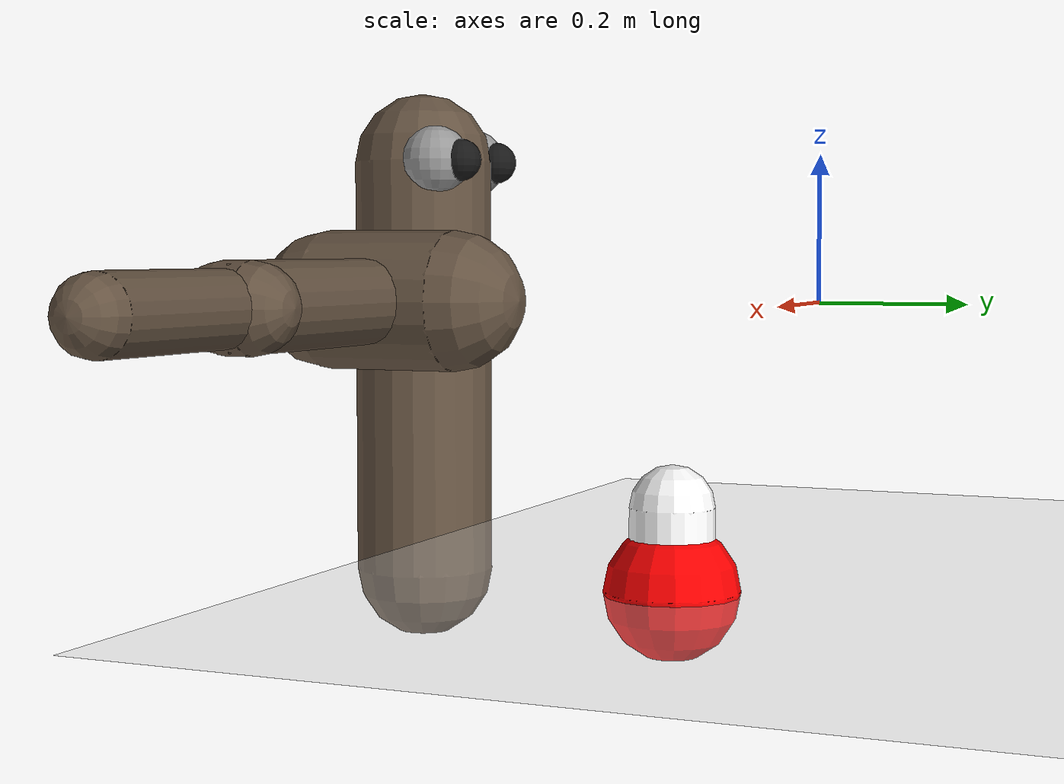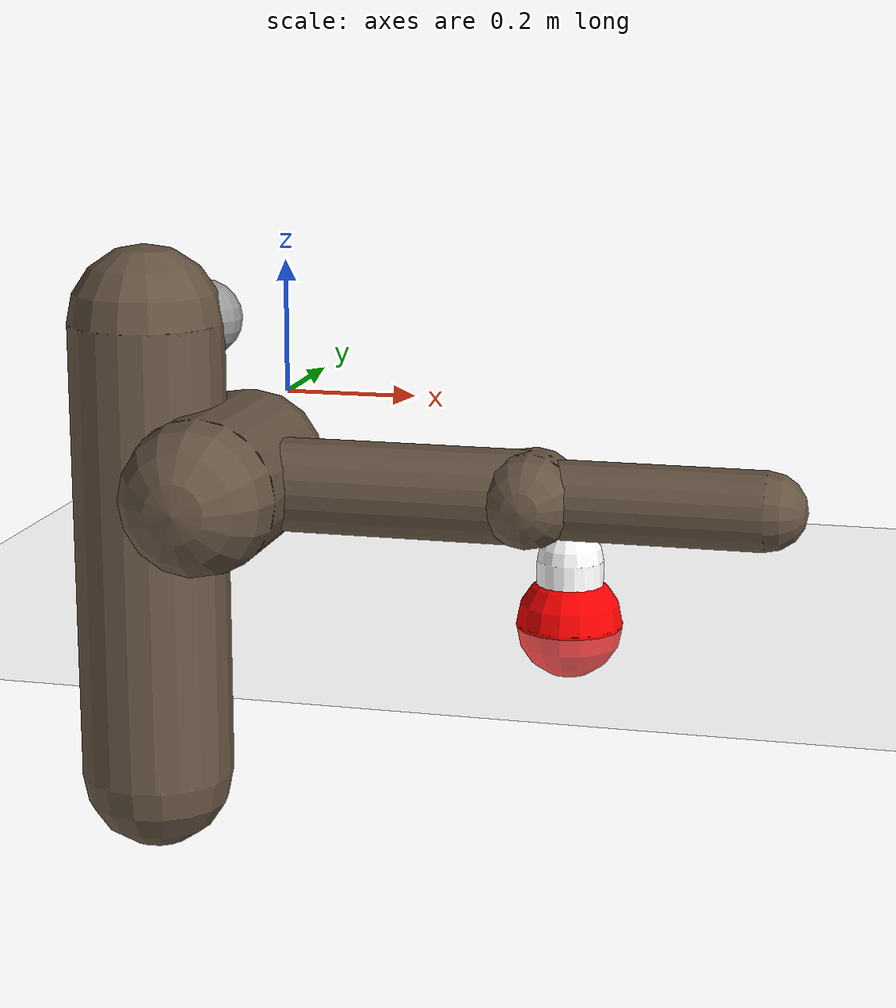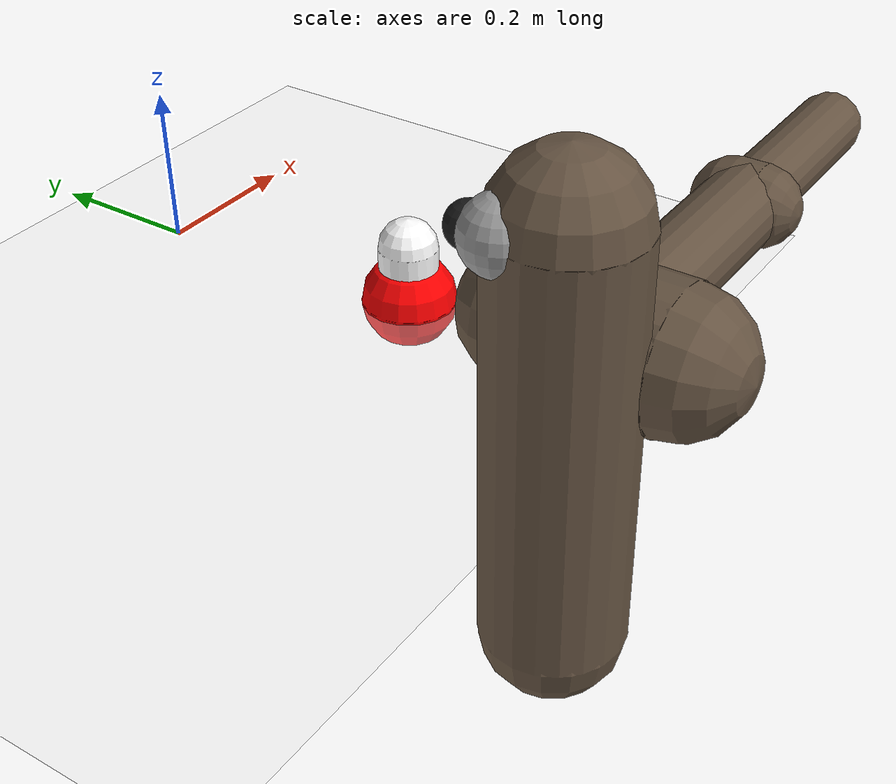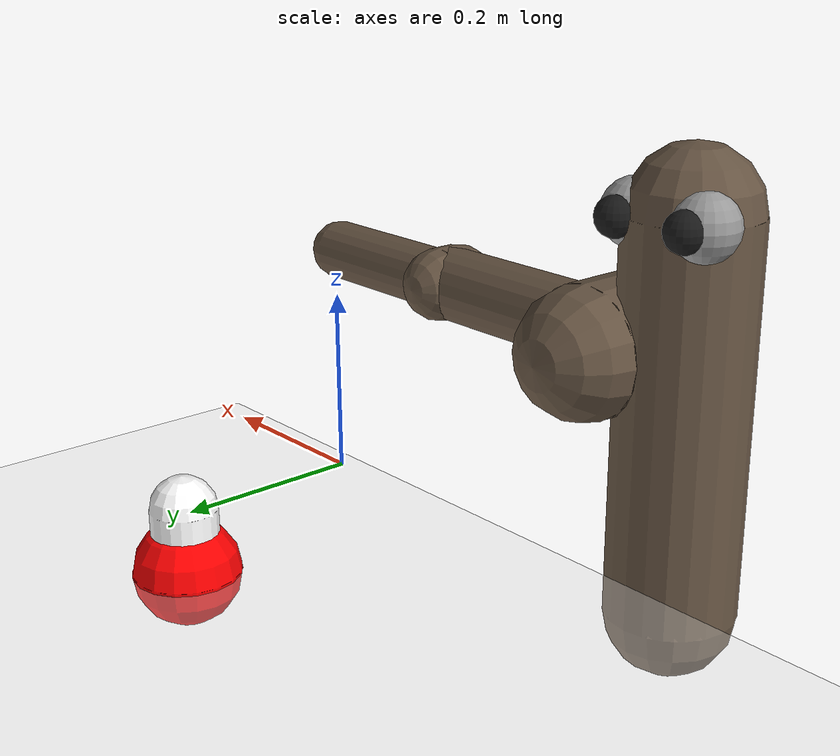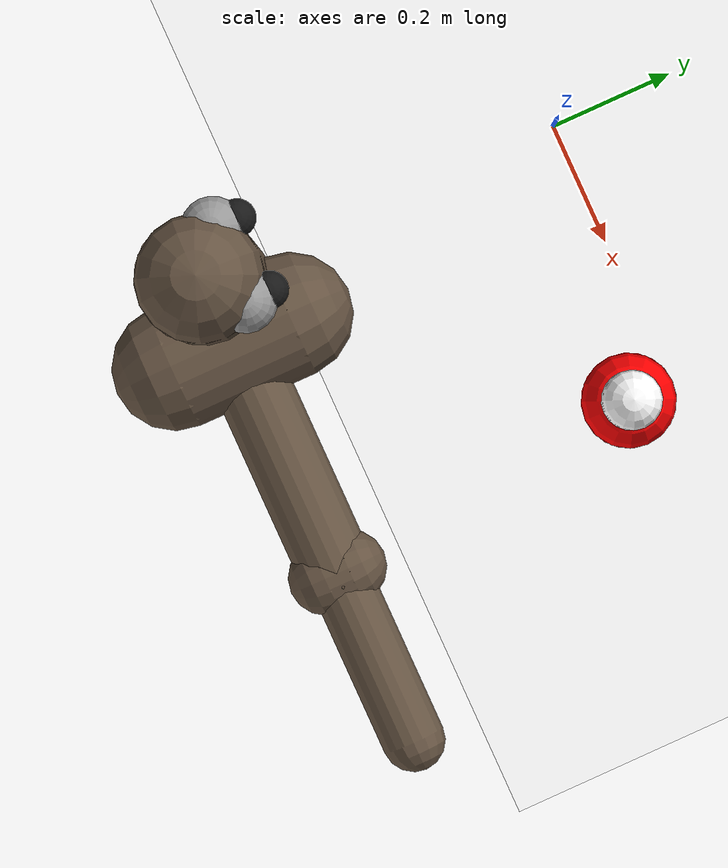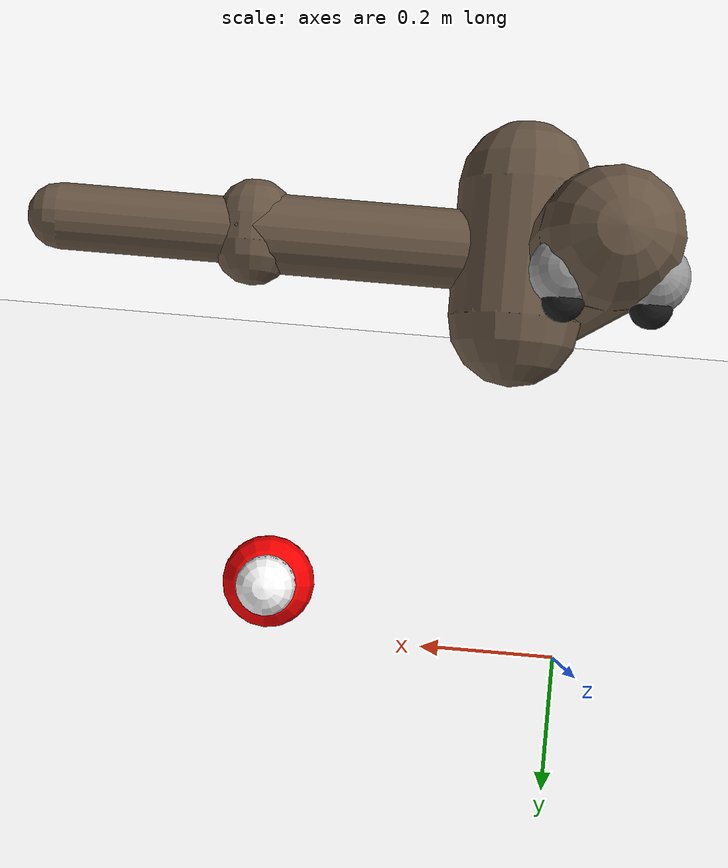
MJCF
<mujoco model="arm3d">
  <compiler inertiafromgeom="true" angle="radian" coordinate="local"/>
  <option timestep="0.01" gravity="0 0 0" iterations="1" ls_iterations="4" integrator="Euler">
    <flag eulerdamp="disable"/>
  </option>

  <default>
    <joint armature='0.04' damping="1" limited="true"/>
    <geom friction=".8 .1 .1" density="300" margin="0.002" condim="3" contype="0" conaffinity="0" rgba="0.4 0.33 0.26 1.0"/>
  </default>

  <custom>
    <numeric data="1" name="max_contact_points"/>
    <numeric data="1" name="max_geom_pairs"/>

    <!-- brax custom params -->
    <numeric data="3000" name="constraint_stiffness"/>
    <numeric data="2000" name="constraint_limit_stiffness"/>
    <numeric data="10" name="constraint_ang_damping"/>
    <numeric data="50" name="constraint_vel_damping"/>
    <numeric data="0" name="ang_damping"/>
    <numeric data="-1" name="vel_damping"/>
    <numeric data="1" name="spring_mass_scale"/>
    <numeric data="1" name="spring_inertia_scale"/>
    <numeric data="10" name="solver_maxls"/>
  </custom>

  <worldbody>
    <light diffuse=".5 .5 .5" pos="0 0 3" dir="0 0 -1"/>
    <geom name="table" type="plane" pos="0 0.5 -0.325" size="1 1 0.1" contype="1" conaffinity="0" rgba="1 1 1 1"/>

    <body name="r_shoulder_pan_link" pos="0 -0.6 0">
      <geom name="e1" type="sphere" rgba="0.6 0.6 0.6 1" pos="-0.06 0.05 0.2" size="0.05" />
      <geom name="e2" type="sphere" rgba="0.6 0.6 0.6 1" pos=" 0.06 0.05 0.2" size="0.05" />
      <geom name="e1p" type="sphere" rgba="0.1 0.1 0.1 1" pos="-0.06 0.09 0.2" size="0.03" />
      <geom name="e2p" type="sphere" rgba="0.1 0.1 0.1 1" pos=" 0.06 0.09 0.2" size="0.03" />
      <geom name="sp" type="capsule" fromto="0 0 -0.4 0 0 0.2" size="0.1" />
      <joint name="r_shoulder_pan_joint" type="hinge" pos="0 0 0" axis="0 0 1" range="-2.2854 1.714602" damping="1.0" />

      <body name="r_shoulder_lift_link" pos="0.1 0 0">
        <geom name="sl" type="capsule" fromto="0 -0.1 0 0 0.1 0" size="0.1" />
        <joint name="r_shoulder_lift_joint" type="hinge" pos="0 0 0" axis="0 1 0" range="-0.5236 1.3963" damping="1.0" />

        <body name="r_upper_arm_roll_link" pos="0 0 0">
          <geom name="uar" type="capsule" fromto="-0.1 0 0 0.1 0 0" size="0.02" />
          <joint name="r_upper_arm_roll_joint" type="hinge" pos="0 0 0" axis="1 0 0" range="-1.5 1.7" damping="0.1" />

          <body name="r_upper_arm_link" pos="0 0 0">
            <geom name="ua" type="capsule" fromto="0 0 0 0.4 0 0" size="0.06" />

            <body name="r_elbow_flex_link" pos="0.4 0 0">
              <geom name="ef" type="capsule" fromto="0 -0.02 0 0.0 0.02 0" size="0.06" />
              <joint name="r_elbow_flex_joint" type="hinge" pos="0 0 0" axis="0 1 0" range="-2.3213 0" damping="0.1" />

              <body name="r_forearm_roll_link" pos="0 0 0">
                <geom name="fr" type="capsule" fromto="-0.1 0 0 0.1 0 0" size="0.02" />
                <joint name="r_forearm_roll_joint" type="hinge" limited="true" pos="0 0 0" axis="1 0 0" damping=".1" range="-1.5 1.5"/>

                <body name="r_forearm_link" pos="0 0 0">
                  <geom name="fa" type="capsule" fromto="0 0 0 0.291 0 0" size="0.05" />

                  <body name="r_wrist_flex_link" pos="0.321 0 0">
                    <geom name="wf" type="capsule" fromto="0 -0.02 0 0 0.02 0" size="0.01" />
                    <joint name="r_wrist_flex_joint" type="hinge" pos="0 0 0" axis="0 1 0" range="-1.094 0" damping=".1" />

                  </body>
                </body>
              </body>
            </body>
          </body>
        </body>
      </body>
    </body>

    <body name="object" pos="0.45 -0.05 -0.275" >
      <!-- Density changed to 1 from 0.00001 for brax. -->
      <geom rgba="1 1 1 0" type="sphere" size="0.05 0.05 0.05" density="1" conaffinity="0"/>
      <geom name="object_geom" rgba="1 1 1 1" type="capsule" size="0.05 0.05 0.05" density="1" contype="1" conaffinity="0"/>
      <joint name="obj_slidey" type="slide" pos="0 0 0" axis="0 1 0" range="-10.3213 10.3" damping="0.5"/>
      <joint name="obj_slidex" type="slide" pos="0 0 0" axis="1 0 0" range="-10.3213 10.3" damping="0.5"/>
    </body>

    <body name="goal" pos="0.45 -0.05 -0.3230">
      <geom rgba="1 0 0 1" type="capsule" size="0.08 0.001 0.1" density='0.00001' contype="0" conaffinity="0"/>
      <joint name="goal_slidey" type="slide" pos="0 0 0" axis="0 1 0" range="-10.3213 10.3" damping="0.5"/>
      <joint name="goal_slidex" type="slide" pos="0 0 0" axis="1 0 0" range="-10.3213 10.3" damping="0.5"/>
    </body>
  </worldbody>

  <actuator>
    <motor joint="r_shoulder_pan_joint" ctrlrange="-2.0 2.0" ctrllimited="true" />
    <motor joint="r_shoulder_lift_joint" ctrlrange="-2.0 2.0" ctrllimited="true" />
    <motor joint="r_upper_arm_roll_joint" ctrlrange="-2.0 2.0" ctrllimited="true" />
    <motor joint="r_elbow_flex_joint" ctrlrange="-2.0 2.0" ctrllimited="true" />
    <motor joint="r_forearm_roll_joint" ctrlrange="-2.0 2.0" ctrllimited="true" />
  </actuator>

</mujoco>
